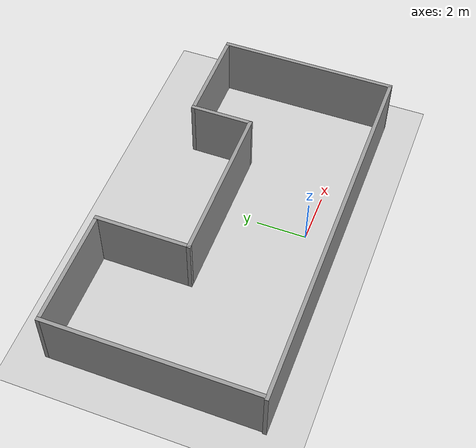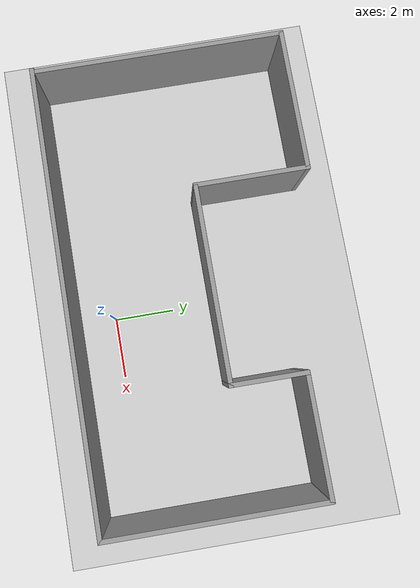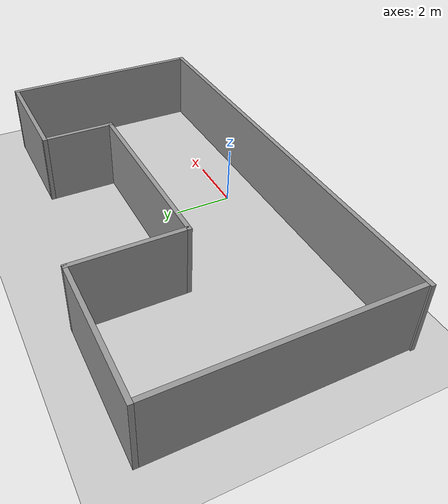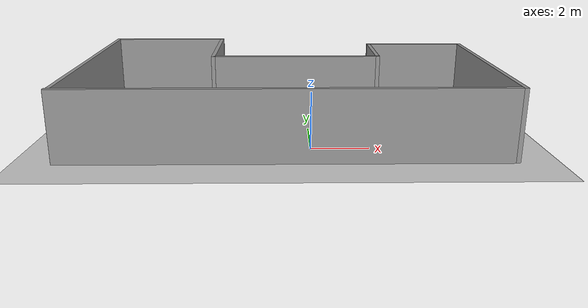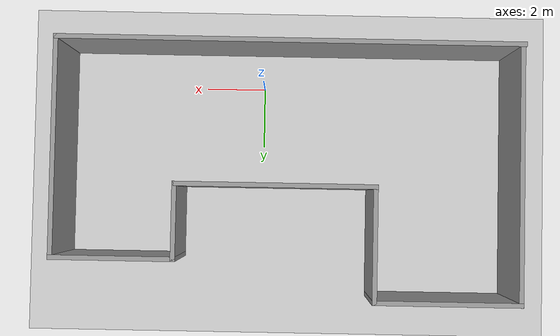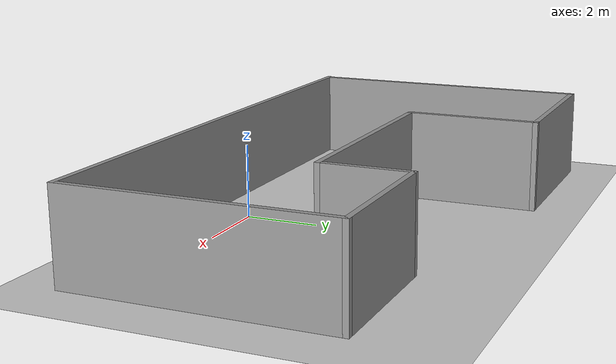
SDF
<sdf version="1.7">
 <world name="default">
  <light name="sun" type="directional">
   <pose>0 0 10 0 -0 0</pose>
   <diffuse>0.8 0.8 0.8 1</diffuse>
   <specular>0.2 0.2 0.2 1</specular>
   <attenuation>
    <range>1000</range>
    <constant>0.9</constant>
    <linear>0.01</linear>
    <quadratic>0.001</quadratic>
   </attenuation>
   <direction>-0.5 0.1 -0.9</direction>
   <spot><inner_angle>0</inner_angle><outer_angle>0</outer_angle><falloff>0</falloff></spot>
  </light>
  <model name="ground_plane">
   <static>1</static>
   <link name="link">
    <collision name="collision">
     <geometry><plane><normal>0 0 1</normal><size>100 100</size></plane></geometry>
     <surface>
      <contact><collide_bitmask>65535</collide_bitmask></contact>
      <friction><ode><mu>100</mu><mu2>50</mu2></ode></friction>
     </surface>
    </collision>
    <visual name="visual">
     <cast_shadows>0</cast_shadows>
     <geometry><plane><normal>0 0 1</normal><size>100 100</size></plane></geometry>
     <material>
      <script><uri>file://media/materials/scripts/gazebo.material</uri><name>Gazebo/Grey</name></script>
     </material>
    </visual>
   </link>
  </model>
  <gravity>0 0 -9.8</gravity>
  <magnetic_field>6e-06 2.3e-05 -4.2e-05</magnetic_field>
  <atmosphere type="adiabatic"/>
  <physics type="ode">
   <max_step_size>0.001</max_step_size>
   <real_time_factor>1</real_time_factor>
   <real_time_update_rate>1000</real_time_update_rate>
  </physics>
  <scene><ambient>0.4 0.4 0.4 1</ambient><background>0.7 0.7 0.7 1</background><shadows>1</shadows></scene>
  <spherical_coordinates>
   <surface_model>EARTH_WGS84</surface_model>
   <latitude_deg>0</latitude_deg>
   <longitude_deg>0</longitude_deg>
   <elevation>0</elevation>
   <heading_deg>0</heading_deg>
  </spherical_coordinates>
  <model name="prosty">
   <pose>-0.835 2.85348 0 0 -0 0</pose>
   <link name="Wall_0">
    <collision name="Wall_0_Collision">
     <geometry><box><size>15 0.15 2.5</size></box></geometry>
     <pose>0 0 1.25 0 -0 0</pose>
    </collision>
    <visual name="Wall_0_Visual">
     <pose>0 0 1.25 0 -0 0</pose>
     <geometry><box><size>15 0.15 2.5</size></box></geometry>
     <material>
      <script><uri>file://media/materials/scripts/gazebo.material</uri><name>Gazebo/Grey</name></script>
      <ambient>1 1 1 1</ambient>
     </material>
     <meta><layer>0</layer></meta>
    </visual>
    <pose>-0 -4.11648 0 0 -0 0</pose>
   </link>
   <link name="Wall_1">
    <collision name="Wall_1_Collision">
     <geometry><box><size>7.1332 0.15 2.5</size></box></geometry>
     <pose>0 0 1.25 0 -0 0</pose>
    </collision>
    <visual name="Wall_1_Visual">
     <pose>0 0 1.25 0 -0 0</pose>
     <geometry><box><size>7.1332 0.15 2.5</size></box></geometry>
     <material>
      <script><uri>file://media/materials/scripts/gazebo.material</uri><name>Gazebo/Grey</name></script>
      <ambient>1 1 1 1</ambient>
     </material>
     <meta><layer>0</layer></meta>
    </visual>
    <pose>7.425 -0.624981 0 0 -0 1.5708</pose>
   </link>
   <link name="Wall_2">
    <collision name="Wall_2_Collision">
     <geometry><box><size>4 0.15 2.5</size></box></geometry>
     <pose>0 0 1.25 0 -0 0</pose>
    </collision>
    <visual name="Wall_2_Visual">
     <pose>0 0 1.25 0 -0 0</pose>
     <geometry><box><size>4 0.15 2.5</size></box></geometry>
     <material>
      <script><uri>file://media/materials/scripts/gazebo.material</uri><name>Gazebo/Grey</name></script>
      <ambient>1 1 1 1</ambient>
     </material>
     <meta><layer>0</layer></meta>
    </visual>
    <pose>5.5 2.86652 0 0 -0 3.14159</pose>
   </link>
   <link name="Wall_3">
    <collision name="Wall_3_Collision">
     <geometry><box><size>2.53186 0.15 2.5</size></box></geometry>
     <pose>0 0 1.25 0 -0 0</pose>
    </collision>
    <visual name="Wall_3_Visual">
     <pose>0 0 1.25 0 -0 0</pose>
     <geometry><box><size>2.53186 0.15 2.5</size></box></geometry>
     <material>
      <script><uri>file://media/materials/scripts/gazebo.material</uri><name>Gazebo/Grey</name></script>
      <ambient>1 1 1 1</ambient>
     </material>
     <meta><layer>0</layer></meta>
    </visual>
    <pose>3.575 1.67568 0 0 -0 -1.5708</pose>
   </link>
   <link name="Wall_4">
    <collision name="Wall_4_Collision">
     <geometry><box><size>6.5 0.15 2.5</size></box></geometry>
     <pose>0 0 1.25 0 -0 0</pose>
    </collision>
    <visual name="Wall_4_Visual">
     <pose>0 0 1.25 0 -0 0</pose>
     <geometry><box><size>6.5 0.15 2.5</size></box></geometry>
     <material>
      <script><uri>file://media/materials/scripts/gazebo.material</uri><name>Gazebo/Grey</name></script>
      <ambient>1 1 1 1</ambient>
     </material>
     <meta><layer>0</layer></meta>
    </visual>
    <pose>0.4 0.48485 0 0 -0 3.14159</pose>
   </link>
   <link name="Wall_5">
    <collision name="Wall_5_Collision">
     <geometry><box><size>3.7818 0.15 2.5</size></box></geometry>
     <pose>0 0 1.25 0 -0 0</pose>
    </collision>
    <visual name="Wall_5_Visual">
     <pose>0 0 1.25 0 -0 0</pose>
     <geometry><box><size>3.7818 0.15 2.5</size></box></geometry>
     <material>
      <script><uri>file://media/materials/scripts/gazebo.material</uri><name>Gazebo/Grey</name></script>
      <ambient>1 1 1 1</ambient>
     </material>
     <meta><layer>0</layer></meta>
    </visual>
    <pose>-2.775 2.30068 0 0 -0 1.5708</pose>
   </link>
   <link name="Wall_6">
    <collision name="Wall_6_Collision">
     <geometry><box><size>4.75 0.15 2.5</size></box></geometry>
     <pose>0 0 1.25 0 -0 0</pose>
    </collision>
    <visual name="Wall_6_Visual">
     <pose>0 0 1.25 0 -0 0</pose>
     <geometry><box><size>4.75 0.15 2.5</size></box></geometry>
     <material>
      <script><uri>file://media/materials/scripts/gazebo.material</uri><name>Gazebo/Grey</name></script>
      <ambient>1 1 1 1</ambient>
     </material>
     <meta><layer>0</layer></meta>
    </visual>
    <pose>-5.075 4.11652 0 0 -0 3.14159</pose>
   </link>
   <link name="Wall_7">
    <collision name="Wall_7_Collision">
     <geometry><box><size>8.25 0.15 2.5</size></box></geometry>
     <pose>0 0 1.25 0 -0 0</pose>
    </collision>
    <visual name="Wall_7_Visual">
     <pose>0 0 1.25 0 -0 0</pose>
     <geometry><box><size>8.25 0.15 2.5</size></box></geometry>
     <material>
      <script><uri>file://media/materials/scripts/gazebo.material</uri><name>Gazebo/Grey</name></script>
      <ambient>1 1 1 1</ambient>
     </material>
     <meta><layer>0</layer></meta>
    </visual>
    <pose>-7.375 0.066519 0 0 -0 -1.5708</pose>
   </link>
   <static>1</static>
  </model>
 </world>
</sdf>
